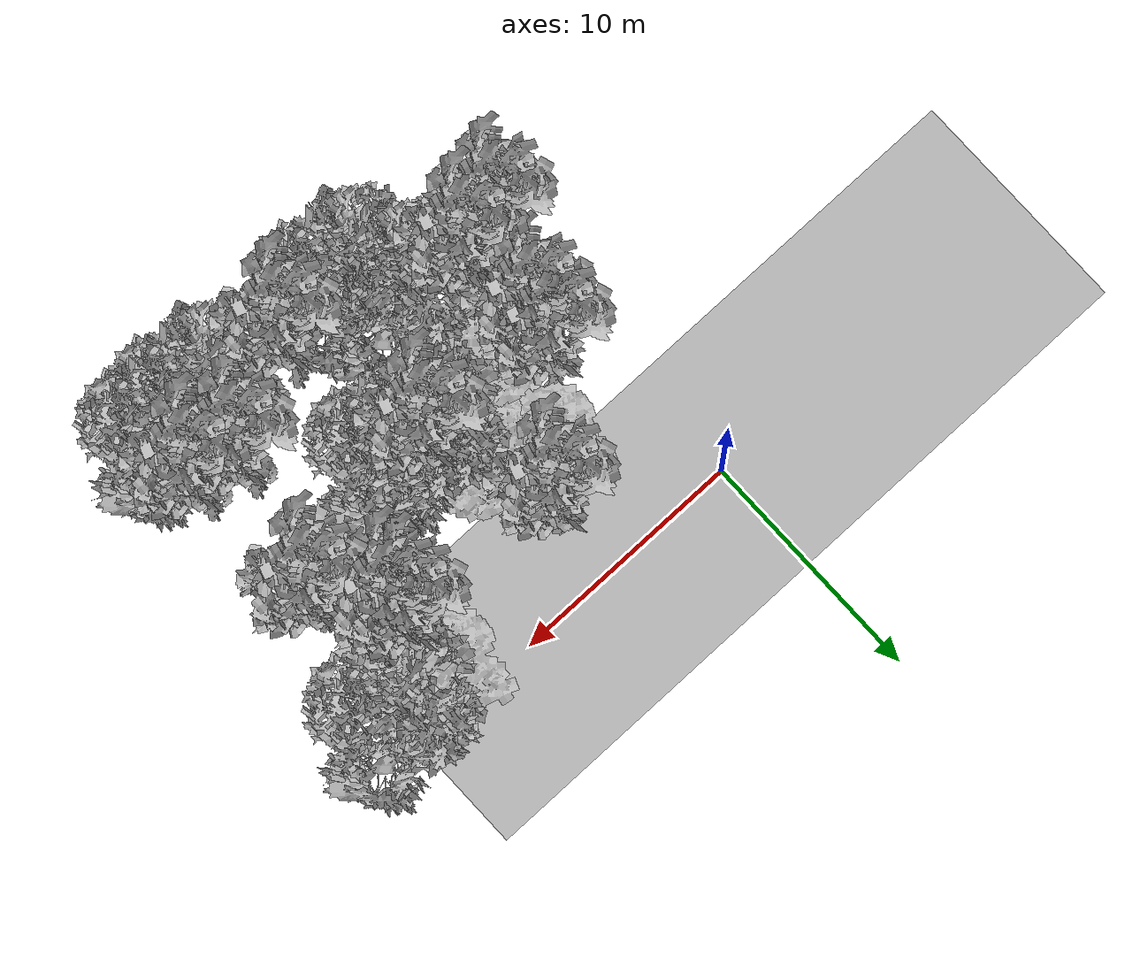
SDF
<sdf version="1.7">
 <world name="default">
  <model name="ground_plane">
   <static>1</static>
   <link name="link">
    <collision name="collision">
     <pose>-50 0 0 0 -0 0</pose>
     <geometry><plane><normal>0 0 1</normal><size>100 100</size></plane></geometry>
     <surface><contact><ode><min_depth>0.01</min_depth><max_vel>0</max_vel></ode></contact></surface>
    </collision>
    <visual name="grass">
     <cast_shadows>0</cast_shadows>
     <geometry>
      <mesh>
       <scale>0.5814285714285714 0.18142857142857144 0.1</scale>
       <uri>file://grass_plane/meshes/grass_plane.dae</uri>
      </mesh>
     </geometry>
    </visual>
   </link>
  </model>
  <model name="Tree 0">
   <static>1</static>
   <pose>6.119149855138183 -2.632654358781883 0 1.57079 -0 0</pose>
   <link name="link">
    <collision name="collision">
     <geometry><mesh><scale>3.5 5 3.5</scale><uri>model://tree_9/meshes/tree_9.obj</uri></mesh></geometry>
    </collision>
    <visual name="visual">
     <geometry><mesh><scale>3.5 5 3.5</scale><uri>model://tree_9/meshes/tree_9.obj</uri></mesh></geometry>
    </visual>
   </link>
  </model>
  <model name="Tree 2">
   <static>1</static>
   <pose>5.522588944779287 -12.322842236727526 0 1.57079 -0 0</pose>
   <link name="link">
    <collision name="collision">
     <geometry><mesh><scale>3.5 5 3.5</scale><uri>model://tree_2/meshes/tree_2.obj</uri></mesh></geometry>
    </collision>
    <visual name="visual">
     <geometry><mesh><scale>3.5 5 3.5</scale><uri>model://tree_2/meshes/tree_2.obj</uri></mesh></geometry>
    </visual>
   </link>
  </model>
  <model name="Tree 18">
   <static>1</static>
   <pose>3.6087251949312957 -5.171122828382419 0 1.57079 -0 0</pose>
   <link name="link">
    <collision name="collision">
     <geometry><mesh><scale>4 2.5 4</scale><uri>model://tree_1/meshes/tree_1.obj</uri></mesh></geometry>
    </collision>
    <visual name="visual">
     <geometry><mesh><scale>4 2.5 4</scale><uri>model://tree_1/meshes/tree_1.obj</uri></mesh></geometry>
    </visual>
   </link>
  </model>
  <model name="Tree 24">
   <static>1</static>
   <pose>15.105307806001214 -14.23932404193658 0 1.57079 -0 0</pose>
   <link name="link">
    <collision name="collision">
     <geometry><mesh><scale>3.5 5 3.5</scale><uri>model://tree_2/meshes/tree_2.obj</uri></mesh></geometry>
    </collision>
    <visual name="visual">
     <geometry><mesh><scale>3.5 5 3.5</scale><uri>model://tree_2/meshes/tree_2.obj</uri></mesh></geometry>
    </visual>
   </link>
  </model>
  <model name="Tree 28">
   <static>1</static>
   <pose>9.337387091460933 -8.031468618281135 0 1.57079 -0 0</pose>
   <link name="link">
    <collision name="collision">
     <geometry><mesh><scale>3.5 5 3.5</scale><uri>model://tree_2/meshes/tree_2.obj</uri></mesh></geometry>
    </collision>
    <visual name="visual">
     <geometry><mesh><scale>3.5 5 3.5</scale><uri>model://tree_2/meshes/tree_2.obj</uri></mesh></geometry>
    </visual>
   </link>
  </model>
  <model name="Tree 65">
   <static>1</static>
   <pose>15.363439966584338 -12.15020001727413 0 1.57079 -0 0</pose>
   <link name="link">
    <collision name="collision">
     <geometry><mesh><scale>3.5 5 3.5</scale><uri>model://tree_9/meshes/tree_9.obj</uri></mesh></geometry>
    </collision>
    <visual name="visual">
     <geometry><mesh><scale>3.5 5 3.5</scale><uri>model://tree_9/meshes/tree_9.obj</uri></mesh></geometry>
    </visual>
   </link>
  </model>
  <model name="Tree 70">
   <static>1</static>
   <pose>16.024470688444566 -0.654679965059362 0 1.57079 -0 0</pose>
   <link name="link">
    <collision name="collision">
     <geometry><mesh><scale>3.5 5 3.5</scale><uri>model://tree_2/meshes/tree_2.obj</uri></mesh></geometry>
    </collision>
    <visual name="visual">
     <geometry><mesh><scale>3.5 5 3.5</scale><uri>model://tree_2/meshes/tree_2.obj</uri></mesh></geometry>
    </visual>
   </link>
  </model>
  <model name="Tree 78">
   <static>1</static>
   <pose>13.41776817405507 -14.419080802914417 0 1.57079 -0 0</pose>
   <link name="link">
    <collision name="collision">
     <geometry><mesh><scale>3.5 5 3.5</scale><uri>model://tree_2/meshes/tree_2.obj</uri></mesh></geometry>
    </collision>
    <visual name="visual">
     <geometry><mesh><scale>3.5 5 3.5</scale><uri>model://tree_2/meshes/tree_2.obj</uri></mesh></geometry>
    </visual>
   </link>
  </model>
  <model name="Tree 85">
   <static>1</static>
   <pose>9.469434354221988 -13.782244330533652 0 1.57079 -0 0</pose>
   <link name="link">
    <collision name="collision">
     <geometry><mesh><scale>3.5 5 3.5</scale><uri>model://tree_9/meshes/tree_9.obj</uri></mesh></geometry>
    </collision>
    <visual name="visual">
     <geometry><mesh><scale>3.5 5 3.5</scale><uri>model://tree_9/meshes/tree_9.obj</uri></mesh></geometry>
    </visual>
   </link>
  </model>
  <model name="Tree 111">
   <static>1</static>
   <pose>12.306001699891887 -1.366612917470757 0 1.57079 -0 0</pose>
   <link name="link">
    <collision name="collision">
     <geometry><mesh><scale>4 2.5 4</scale><uri>model://tree_1/meshes/tree_1.obj</uri></mesh></geometry>
    </collision>
    <visual name="visual">
     <geometry><mesh><scale>4 2.5 4</scale><uri>model://tree_1/meshes/tree_1.obj</uri></mesh></geometry>
    </visual>
   </link>
  </model>
  <model name="Tree 123">
   <static>1</static>
   <pose>13.312488163637681 -3.645243507724169 0 1.57079 -0 0</pose>
   <link name="link">
    <collision name="collision">
     <geometry><mesh><scale>3.5 5 3.5</scale><uri>model://tree_9/meshes/tree_9.obj</uri></mesh></geometry>
    </collision>
    <visual name="visual">
     <geometry><mesh><scale>3.5 5 3.5</scale><uri>model://tree_9/meshes/tree_9.obj</uri></mesh></geometry>
    </visual>
   </link>
  </model>
  <model name="Tree 124">
   <static>1</static>
   <pose>2.220545393392065 -8.125765388394335 0 1.57079 -0 0</pose>
   <link name="link">
    <collision name="collision">
     <geometry><mesh><scale>3.5 5 3.5</scale><uri>model://tree_9/meshes/tree_9.obj</uri></mesh></geometry>
    </collision>
    <visual name="visual">
     <geometry><mesh><scale>3.5 5 3.5</scale><uri>model://tree_9/meshes/tree_9.obj</uri></mesh></geometry>
    </visual>
   </link>
  </model>
  <model name="Tree 136">
   <static>1</static>
   <pose>8.38035256960827 -7.709750277647613 0 1.57079 -0 0</pose>
   <link name="link">
    <collision name="collision">
     <geometry><mesh><scale>3.5 5 3.5</scale><uri>model://tree_2/meshes/tree_2.obj</uri></mesh></geometry>
    </collision>
    <visual name="visual">
     <geometry><mesh><scale>3.5 5 3.5</scale><uri>model://tree_2/meshes/tree_2.obj</uri></mesh></geometry>
    </visual>
   </link>
  </model>
  <model name="Tree 144">
   <static>1</static>
   <pose>2.3816603167853785 -6.93039257455067 0 1.57079 -0 0</pose>
   <link name="link">
    <collision name="collision">
     <geometry><mesh><scale>3.5 5 3.5</scale><uri>model://tree_9/meshes/tree_9.obj</uri></mesh></geometry>
    </collision>
    <visual name="visual">
     <geometry><mesh><scale>3.5 5 3.5</scale><uri>model://tree_9/meshes/tree_9.obj</uri></mesh></geometry>
    </visual>
   </link>
  </model>
  <model name="Tree 157">
   <static>1</static>
   <pose>3.5821127489259226 -14.49135798637771 0 1.57079 -0 0</pose>
   <link name="link">
    <collision name="collision">
     <geometry><mesh><scale>3 2 3</scale><uri>model://tree_3/meshes/tree_3.obj</uri></mesh></geometry>
    </collision>
    <visual name="visual">
     <geometry><mesh><scale>3 2 3</scale><uri>model://tree_3/meshes/tree_3.obj</uri></mesh></geometry>
    </visual>
   </link>
  </model>
  <model name="Tree 169">
   <static>1</static>
   <pose>8.0026048483194 -7.55978932865667 0 1.57079 -0 0</pose>
   <link name="link">
    <collision name="collision">
     <geometry><mesh><scale>3.5 5 3.5</scale><uri>model://tree_9/meshes/tree_9.obj</uri></mesh></geometry>
    </collision>
    <visual name="visual">
     <geometry><mesh><scale>3.5 5 3.5</scale><uri>model://tree_9/meshes/tree_9.obj</uri></mesh></geometry>
    </visual>
   </link>
  </model>
  <model name="Tree 190">
   <static>1</static>
   <pose>11.85571928737324 -8.055843237716285 0 1.57079 -0 0</pose>
   <link name="link">
    <collision name="collision">
     <geometry><mesh><scale>3 2 3</scale><uri>model://tree_3/meshes/tree_3.obj</uri></mesh></geometry>
    </collision>
    <visual name="visual">
     <geometry><mesh><scale>3 2 3</scale><uri>model://tree_3/meshes/tree_3.obj</uri></mesh></geometry>
    </visual>
   </link>
  </model>
  <model name="Tree 198">
   <static>1</static>
   <pose>3.833462495638237 -9.358855714038793 0 1.57079 -0 0</pose>
   <link name="link">
    <collision name="collision">
     <geometry><mesh><scale>4 2.5 4</scale><uri>model://tree_1/meshes/tree_1.obj</uri></mesh></geometry>
    </collision>
    <visual name="visual">
     <geometry><mesh><scale>4 2.5 4</scale><uri>model://tree_1/meshes/tree_1.obj</uri></mesh></geometry>
    </visual>
   </link>
  </model>
  <model name="Tree 199">
   <static>1</static>
   <pose>12.991244795722835 -3.045544726120628 0 1.57079 -0 0</pose>
   <link name="link">
    <collision name="collision">
     <geometry><mesh><scale>3.5 5 3.5</scale><uri>model://tree_9/meshes/tree_9.obj</uri></mesh></geometry>
    </collision>
    <visual name="visual">
     <geometry><mesh><scale>3.5 5 3.5</scale><uri>model://tree_9/meshes/tree_9.obj</uri></mesh></geometry>
    </visual>
   </link>
  </model>
  <model name="Tree 201">
   <static>1</static>
   <pose>0.7646307132771 -11.79564277941989 0 1.57079 -0 0</pose>
   <link name="link">
    <collision name="collision">
     <geometry><mesh><scale>3.5 5 3.5</scale><uri>model://tree_9/meshes/tree_9.obj</uri></mesh></geometry>
    </collision>
    <visual name="visual">
     <geometry><mesh><scale>3.5 5 3.5</scale><uri>model://tree_9/meshes/tree_9.obj</uri></mesh></geometry>
    </visual>
   </link>
  </model>
  <model name="Tree 210">
   <static>1</static>
   <pose>13.53413053890047 -11.660946787186024 0 1.57079 -0 0</pose>
   <link name="link">
    <collision name="collision">
     <geometry><mesh><scale>3.5 5 3.5</scale><uri>model://tree_9/meshes/tree_9.obj</uri></mesh></geometry>
    </collision>
    <visual name="visual">
     <geometry><mesh><scale>3.5 5 3.5</scale><uri>model://tree_9/meshes/tree_9.obj</uri></mesh></geometry>
    </visual>
   </link>
  </model>
  <model name="Tree 218">
   <static>1</static>
   <pose>6.535228549664545 -14.014270121552595 0 1.57079 -0 0</pose>
   <link name="link">
    <collision name="collision">
     <geometry><mesh><scale>3.5 5 3.5</scale><uri>model://tree_2/meshes/tree_2.obj</uri></mesh></geometry>
    </collision>
    <visual name="visual">
     <geometry><mesh><scale>3.5 5 3.5</scale><uri>model://tree_2/meshes/tree_2.obj</uri></mesh></geometry>
    </visual>
   </link>
  </model>
  <model name="Tree 235">
   <static>1</static>
   <pose>15.109164205753785 -6.044735826971937 0 1.57079 -0 0</pose>
   <link name="link">
    <collision name="collision">
     <geometry><mesh><scale>3.5 5 3.5</scale><uri>model://tree_9/meshes/tree_9.obj</uri></mesh></geometry>
    </collision>
    <visual name="visual">
     <geometry><mesh><scale>3.5 5 3.5</scale><uri>model://tree_9/meshes/tree_9.obj</uri></mesh></geometry>
    </visual>
   </link>
  </model>
  <model name="Tree 261">
   <static>1</static>
   <pose>5.26520108653834 -5.954965175109999 0 1.57079 -0 0</pose>
   <link name="link">
    <collision name="collision">
     <geometry><mesh><scale>4 2.5 4</scale><uri>model://tree_1/meshes/tree_1.obj</uri></mesh></geometry>
    </collision>
    <visual name="visual">
     <geometry><mesh><scale>4 2.5 4</scale><uri>model://tree_1/meshes/tree_1.obj</uri></mesh></geometry>
    </visual>
   </link>
  </model>
  <model name="Tree 267">
   <static>1</static>
   <pose>2.401812408097541 -11.567262760967871 0 1.57079 -0 0</pose>
   <link name="link">
    <collision name="collision">
     <geometry><mesh><scale>3.5 5 3.5</scale><uri>model://tree_9/meshes/tree_9.obj</uri></mesh></geometry>
    </collision>
    <visual name="visual">
     <geometry><mesh><scale>3.5 5 3.5</scale><uri>model://tree_9/meshes/tree_9.obj</uri></mesh></geometry>
    </visual>
   </link>
  </model>
  <model name="Tree 297">
   <static>1</static>
   <pose>7.244994240031502 -6.563436701820152 0 1.57079 -0 0</pose>
   <link name="link">
    <collision name="collision">
     <geometry><mesh><scale>4 2.5 4</scale><uri>model://tree_1/meshes/tree_1.obj</uri></mesh></geometry>
    </collision>
    <visual name="visual">
     <geometry><mesh><scale>4 2.5 4</scale><uri>model://tree_1/meshes/tree_1.obj</uri></mesh></geometry>
    </visual>
   </link>
  </model>
 </world>
</sdf>
